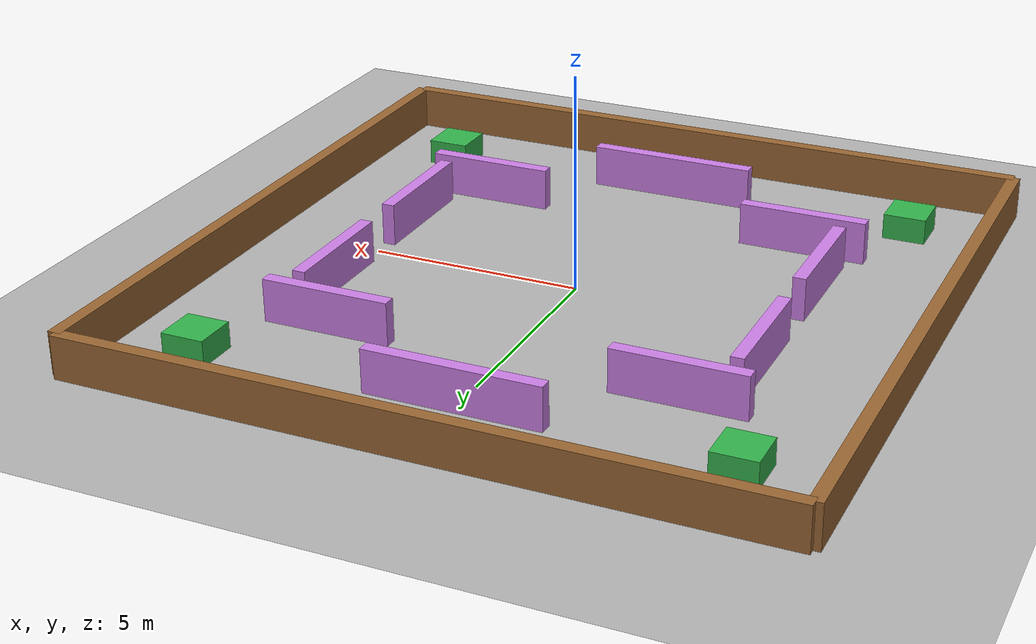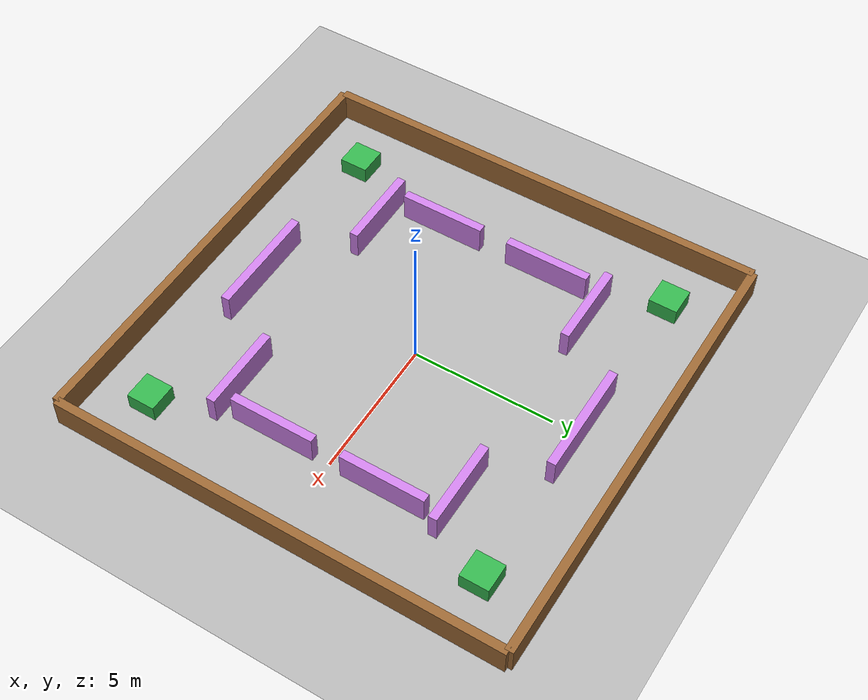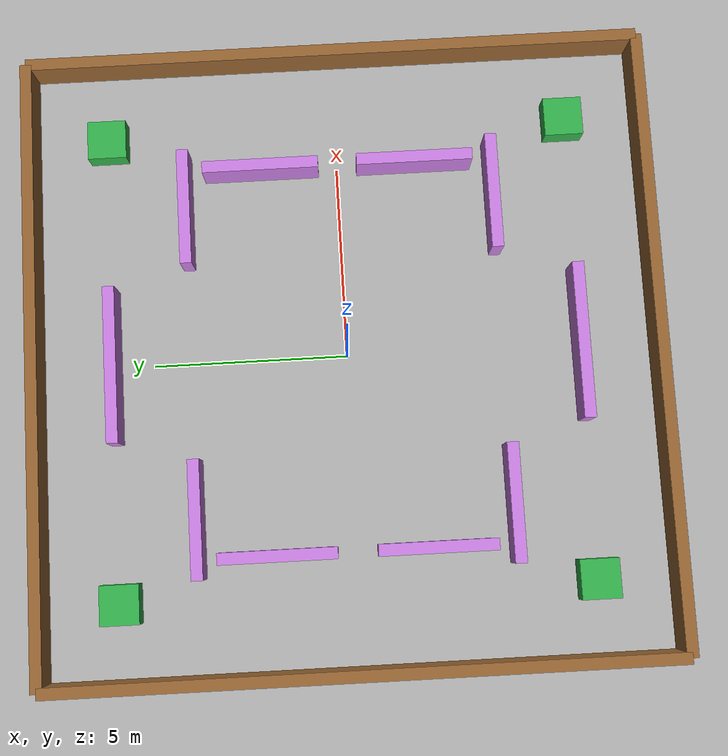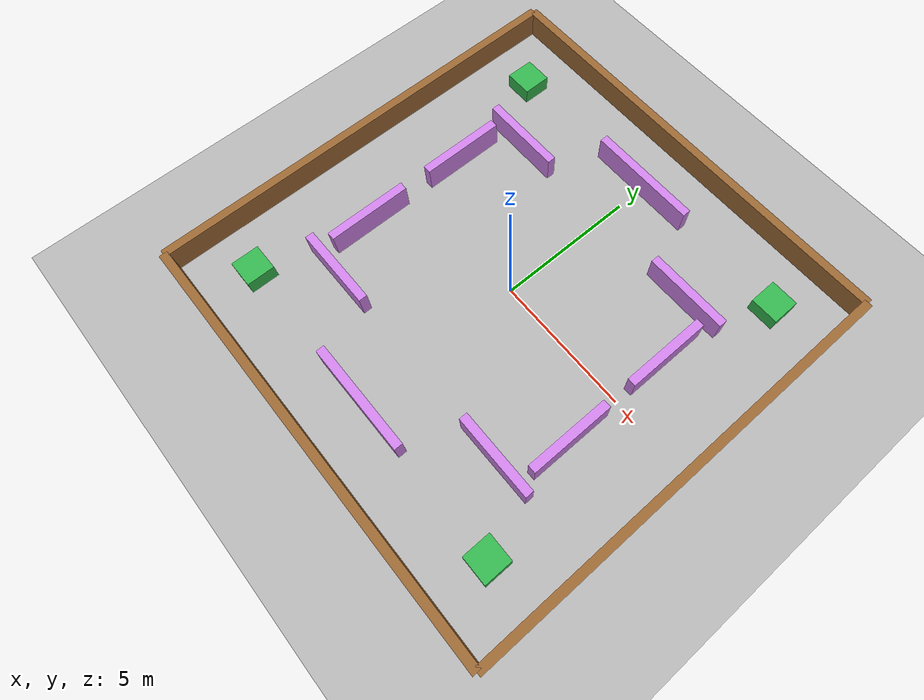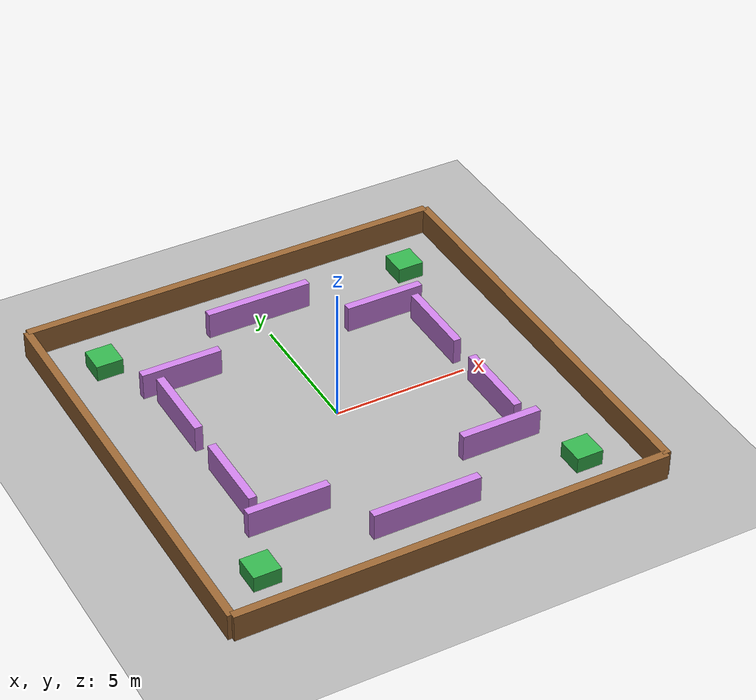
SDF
<?xml version="1.0" ?>
<sdf version="1.8">
  <world name="maze">

    <!-- Physics parameters for better simulation -->
    <physics name="default_physics" type="ode">
      <max_step_size>0.001</max_step_size>
      <real_time_factor>1.0</real_time_factor>
      <real_time_update_rate>1000</real_time_update_rate>
    </physics>

    <!-- Required plugins for sensor data and robot operation -->
    <plugin filename="gz-sim-physics-system" name="gz::sim::v8::systems::Physics"/>
    <plugin filename="gz-sim-scene-broadcaster-system" name="gz::sim::v8::systems::SceneBroadcaster"/>
    <plugin filename="gz-sim-user-commands-system" name="gz::sim::v8::systems::UserCommands"/>

    <!-- CRITICAL: Sensors plugin - needed for lidar, camera, IMU data -->
    <plugin filename="gz-sim-sensors-system" name="gz::sim::v8::systems::Sensors">
      <render_engine>ogre2</render_engine>
    </plugin>

    <!-- IMU system for inertial measurements -->
    <plugin filename="gz-sim-imu-system" name="gz::sim::v8::systems::Imu"/>

    <!-- Contact system for collision detection -->
    <plugin filename="gz-sim-contact-system" name="gz::sim::v8::systems::Contact"/>

    <!-- Lighting -->
    <light name="sun" type="directional">
      <cast_shadows>true</cast_shadows>
      <pose>0 0 10 0 0 0</pose>
      <diffuse>1 1 1 1</diffuse>
      <specular>0.5 0.5 0.5 1</specular>
      <direction>-0.5 0.1 -0.9</direction>
    </light>

    <!-- Ground plane -->
    <model name="ground_plane">
      <static>true</static>
      <link name="link">
        <collision name="collision">
          <geometry><plane><normal>0 0 1</normal><size>30 30</size></plane></geometry>
        </collision>
        <visual name="visual">
          <geometry><plane><normal>0 0 1</normal><size>30 30</size></plane></geometry>
          <material>
            <ambient>0.7 0.7 0.7 1</ambient>
            <diffuse>0.7 0.7 0.7 1</diffuse>
          </material>
        </visual>
      </link>
    </model>

    <!-- OUTER WALLS (boundary of the maze)            -->

    <model name="wall_north">
      <static>true</static>
      <pose>0 8 0.5 0 0 0</pose>
      <link name="link">
        <collision name="c"><geometry><box><size>16 0.3 1</size></box></geometry></collision>
        <visual name="v">
          <geometry><box><size>16 0.3 1</size></box></geometry>
          <material><ambient>0.6 0.4 0.2 1</ambient><diffuse>0.6 0.4 0.2 1</diffuse></material>
        </visual>
      </link>
    </model>

    <model name="wall_south">
      <static>true</static>
      <pose>0 -8 0.5 0 0 0</pose>
      <link name="link">
        <collision name="c"><geometry><box><size>16 0.3 1</size></box></geometry></collision>
        <visual name="v">
          <geometry><box><size>16 0.3 1</size></box></geometry>
          <material><ambient>0.6 0.4 0.2 1</ambient><diffuse>0.6 0.4 0.2 1</diffuse></material>
        </visual>
      </link>
    </model>

    <model name="wall_east">
      <static>true</static>
      <pose>8 0 0.5 0 0 0</pose>
      <link name="link">
        <collision name="c"><geometry><box><size>0.3 16 1</size></box></geometry></collision>
        <visual name="v">
          <geometry><box><size>0.3 16 1</size></box></geometry>
          <material><ambient>0.6 0.4 0.2 1</ambient><diffuse>0.6 0.4 0.2 1</diffuse></material>
        </visual>
      </link>
    </model>

    <model name="wall_west">
      <static>true</static>
      <pose>-8 0 0.5 0 0 0</pose>
      <link name="link">
        <collision name="c"><geometry><box><size>0.3 16 1</size></box></geometry></collision>
        <visual name="v">
          <geometry><box><size>0.3 16 1</size></box></geometry>
          <material><ambient>0.6 0.4 0.2 1</ambient><diffuse>0.6 0.4 0.2 1</diffuse></material>
        </visual>
      </link>
    </model>

    <!-- INNER WALLS (maze corridors)                  -->
    <!-- All walls avoid the center area (-2 to 2)    -->

    <!-- Top-left corridor wall -->
    <model name="inner_wall_1">
      <static>true</static>
      <pose>-4 4 0.5 0 0 0</pose>
      <link name="link">
        <collision name="c"><geometry><box><size>3 0.3 1</size></box></geometry></collision>
        <visual name="v">
          <geometry><box><size>3 0.3 1</size></box></geometry>
          <material><ambient>0.8 0.5 0.9 1</ambient><diffuse>0.8 0.5 0.9 1</diffuse></material>
        </visual>
      </link>
    </model>

    <!-- Top-right corridor wall -->
    <model name="inner_wall_2">
      <static>true</static>
      <pose>4 4 0.5 0 0 0</pose>
      <link name="link">
        <collision name="c"><geometry><box><size>3 0.3 1</size></box></geometry></collision>
        <visual name="v">
          <geometry><box><size>3 0.3 1</size></box></geometry>
          <material><ambient>0.8 0.5 0.9 1</ambient><diffuse>0.8 0.5 0.9 1</diffuse></material>
        </visual>
      </link>
    </model>

    <!-- Bottom-left corridor wall -->
    <model name="inner_wall_3">
      <static>true</static>
      <pose>-4 -4 0.5 0 0 0</pose>
      <link name="link">
        <collision name="c"><geometry><box><size>3 0.3 1</size></box></geometry></collision>
        <visual name="v">
          <geometry><box><size>3 0.3 1</size></box></geometry>
          <material><ambient>0.8 0.5 0.9 1</ambient><diffuse>0.8 0.5 0.9 1</diffuse></material>
        </visual>
      </link>
    </model>

    <!-- Bottom-right corridor wall -->
    <model name="inner_wall_4">
      <static>true</static>
      <pose>4 -4 0.5 0 0 0</pose>
      <link name="link">
        <collision name="c"><geometry><box><size>3 0.3 1</size></box></geometry></collision>
        <visual name="v">
          <geometry><box><size>3 0.3 1</size></box></geometry>
          <material><ambient>0.8 0.5 0.9 1</ambient><diffuse>0.8 0.5 0.9 1</diffuse></material>
        </visual>
      </link>
    </model>

    <!-- Vertical wall on left side (top) -->
    <model name="inner_wall_5">
      <static>true</static>
      <pose>-5 2 0.5 0 0 0</pose>
      <link name="link">
        <collision name="c"><geometry><box><size>0.3 3 1</size></box></geometry></collision>
        <visual name="v">
          <geometry><box><size>0.3 3 1</size></box></geometry>
          <material><ambient>0.8 0.5 0.9 1</ambient><diffuse>0.8 0.5 0.9 1</diffuse></material>
        </visual>
      </link>
    </model>

    <!-- Vertical wall on left side (bottom) -->
    <model name="inner_wall_6">
      <static>true</static>
      <pose>-5 -2 0.5 0 0 0</pose>
      <link name="link">
        <collision name="c"><geometry><box><size>0.3 3 1</size></box></geometry></collision>
        <visual name="v">
          <geometry><box><size>0.3 3 1</size></box></geometry>
          <material><ambient>0.8 0.5 0.9 1</ambient><diffuse>0.8 0.5 0.9 1</diffuse></material>
        </visual>
      </link>
    </model>

    <!-- Vertical wall on right side (top) -->
    <model name="inner_wall_7">
      <static>true</static>
      <pose>5 2 0.5 0 0 0</pose>
      <link name="link">
        <collision name="c"><geometry><box><size>0.3 3 1</size></box></geometry></collision>
        <visual name="v">
          <geometry><box><size>0.3 3 1</size></box></geometry>
          <material><ambient>0.8 0.5 0.9 1</ambient><diffuse>0.8 0.5 0.9 1</diffuse></material>
        </visual>
      </link>
    </model>

    <!-- Vertical wall on right side (bottom) -->
    <model name="inner_wall_8">
      <static>true</static>
      <pose>5 -2 0.5 0 0 0</pose>
      <link name="link">
        <collision name="c"><geometry><box><size>0.3 3 1</size></box></geometry></collision>
        <visual name="v">
          <geometry><box><size>0.3 3 1</size></box></geometry>
          <material><ambient>0.8 0.5 0.9 1</ambient><diffuse>0.8 0.5 0.9 1</diffuse></material>
        </visual>
      </link>
    </model>

    <!-- Horizontal wall in top-middle area (avoids center) -->
    <model name="inner_wall_9">
      <static>true</static>
      <pose>0 6 0.5 0 0 0</pose>
      <link name="link">
        <collision name="c"><geometry><box><size>4 0.3 1</size></box></geometry></collision>
        <visual name="v">
          <geometry><box><size>4 0.3 1</size></box></geometry>
          <material><ambient>0.8 0.5 0.9 1</ambient><diffuse>0.8 0.5 0.9 1</diffuse></material>
        </visual>
      </link>
    </model>

    <!-- Horizontal wall in bottom-middle area (avoids center) -->
    <model name="inner_wall_10">
      <static>true</static>
      <pose>0 -6 0.5 0 0 0</pose>
      <link name="link">
        <collision name="c"><geometry><box><size>4 0.3 1</size></box></geometry></collision>
        <visual name="v">
          <geometry><box><size>4 0.3 1</size></box></geometry>
          <material><ambient>0.8 0.5 0.9 1</ambient><diffuse>0.8 0.5 0.9 1</diffuse></material>
        </visual>
      </link>
    </model>

    <!-- Small obstacles placed AWAY from center (corners only) -->

    <!-- Top-left corner obstacle -->
    <model name="obs_corner_tl">
      <static>true</static>
      <pose>-6 6 0.3 0 0 0</pose>
      <link name="link">
        <collision name="c"><geometry><box><size>1 1 0.6</size></box></geometry></collision>
        <visual name="v">
          <geometry><box><size>1 1 0.6</size></box></geometry>
          <material><ambient>0.2 0.7 0.3 1</ambient><diffuse>0.2 0.7 0.3 1</diffuse></material>
        </visual>
      </link>
    </model>

    <!-- Top-right corner obstacle -->
    <model name="obs_corner_tr">
      <static>true</static>
      <pose>6 6 0.3 0 0 0</pose>
      <link name="link">
        <collision name="c"><geometry><box><size>1 1 0.6</size></box></geometry></collision>
        <visual name="v">
          <geometry><box><size>1 1 0.6</size></box></geometry>
          <material><ambient>0.2 0.7 0.3 1</ambient><diffuse>0.2 0.7 0.3 1</diffuse></material>
        </visual>
      </link>
    </model>

    <!-- Bottom-left corner obstacle -->
    <model name="obs_corner_bl">
      <static>true</static>
      <pose>-6 -6 0.3 0 0 0</pose>
      <link name="link">
        <collision name="c"><geometry><box><size>1 1 0.6</size></box></geometry></collision>
        <visual name="v">
          <geometry><box><size>1 1 0.6</size></box></geometry>
          <material><ambient>0.2 0.7 0.3 1</ambient><diffuse>0.2 0.7 0.3 1</diffuse></material>
        </visual>
      </link>
    </model>

    <!-- Bottom-right corner obstacle -->
    <model name="obs_corner_br">
      <static>true</static>
      <pose>6 -6 0.3 0 0 0</pose>
      <link name="link">
        <collision name="c"><geometry><box><size>1 1 0.6</size></box></geometry></collision>
        <visual name="v">
          <geometry><box><size>1 1 0.6</size></box></geometry>
          <material><ambient>0.2 0.7 0.3 1</ambient><diffuse>0.2 0.7 0.3 1</diffuse></material>
        </visual>
      </link>
    </model>

  </world>
</sdf>
